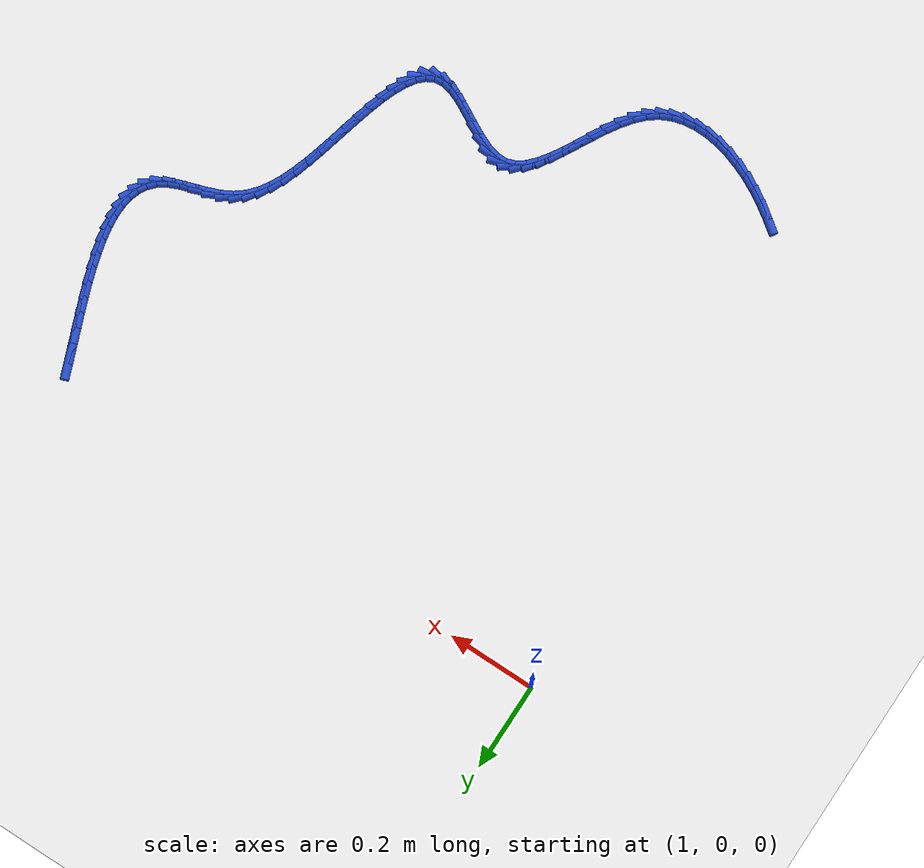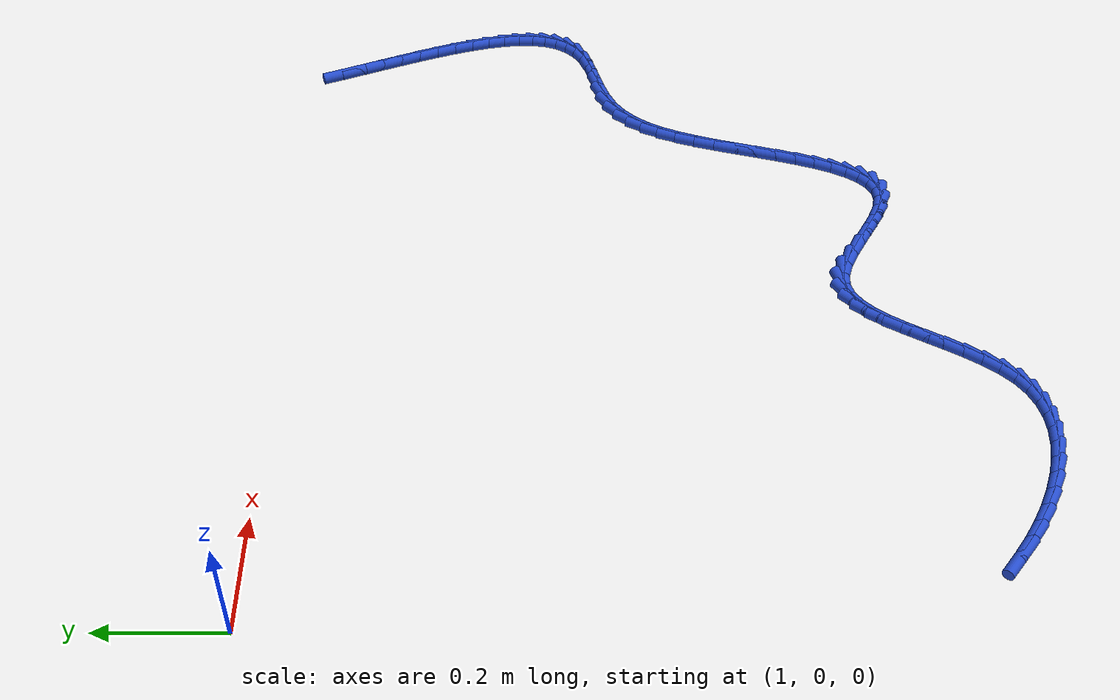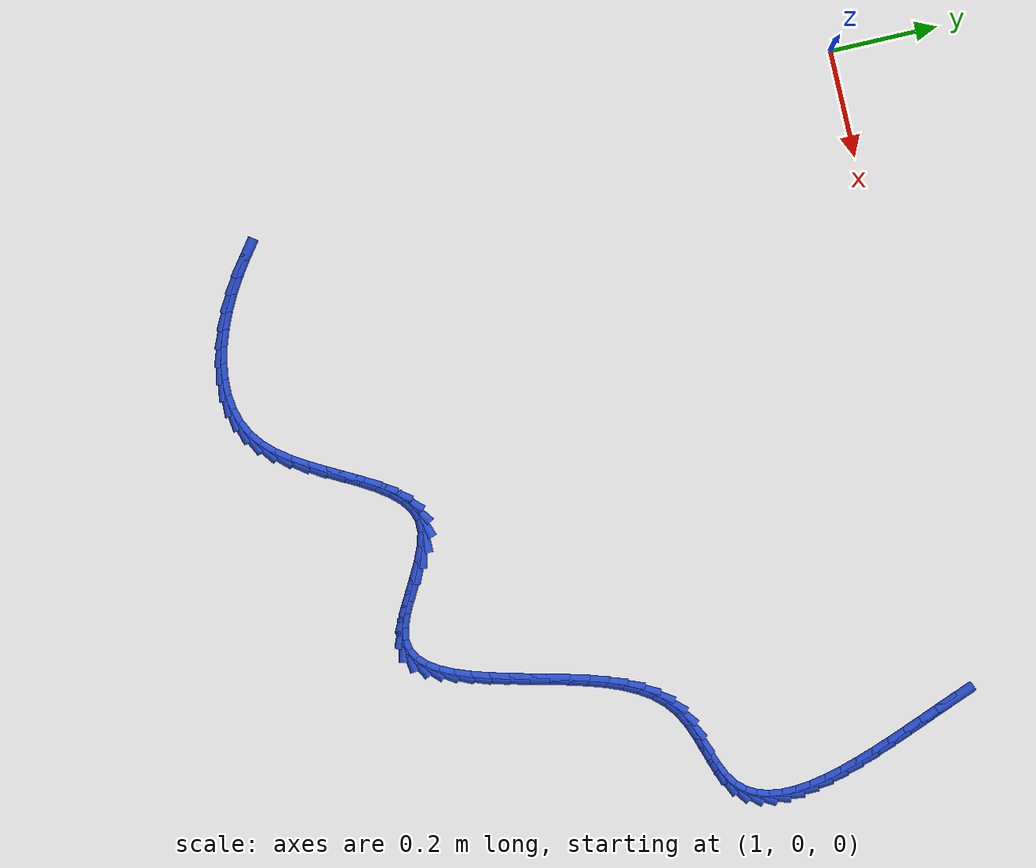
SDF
<sdf version="1.6">
 <world name="default">
  <model name="ground_plane">
   <static>1</static>
   <link name="link">
    <collision name="collision">
     <geometry><plane><normal>0 0 1</normal><size>100 100</size></plane></geometry>
     <surface><friction><ode><mu>100</mu><mu2>50</mu2></ode></friction></surface>
    </collision>
    <visual name="visual">
     <cast_shadows>0</cast_shadows>
     <geometry><plane><normal>0 0 1</normal><size>100 100</size></plane></geometry>
     <material>
      <script><uri>file://media/materials/scripts/gazebo.material</uri><name>Gazebo/WhiteGlow</name></script>
     </material>
    </visual>
   </link>
  </model>
  <model name="line">
   <link name="link_139">
    <pose>2.201142323351105 -0.04360350823469124 0.01 0 1.57 -1.2011310993112423</pose>
    <collision name="collision">
     <geometry><cylinder><radius>0.01</radius><length>0.08</length></cylinder></geometry>
    </collision>
    <visual name="visual">
     <material>
      <script><name>Gazebo/Blue</name><uri>file://media/materials/scripts/gazebo.material</uri></script>
     </material>
     <geometry><cylinder><radius>0.01</radius><length>0.08</length></cylinder></geometry>
    </visual>
   </link>
   <link name="link_140">
    <pose>2.2137091033663823 -0.07603574317068523 0.01 0 1.57 -1.1957572216161112</pose>
    <collision name="collision">
     <geometry><cylinder><radius>0.01</radius><length>0.08</length></cylinder></geometry>
    </collision>
    <visual name="visual">
     <material>
      <script><name>Gazebo/Blue</name><uri>file://media/materials/scripts/gazebo.material</uri></script>
     </material>
     <geometry><cylinder><radius>0.01</radius><length>0.08</length></cylinder></geometry>
    </visual>
   </link>
   <link name="link_141">
    <pose>2.2266985634324397 -0.10903140610215024 0.01 0 1.57 -1.1975371997344688</pose>
    <collision name="collision">
     <geometry><cylinder><radius>0.01</radius><length>0.08</length></cylinder></geometry>
    </collision>
    <visual name="visual">
     <material>
      <script><name>Gazebo/Blue</name><uri>file://media/materials/scripts/gazebo.material</uri></script>
     </material>
     <geometry><cylinder><radius>0.01</radius><length>0.08</length></cylinder></geometry>
    </visual>
   </link>
   <link name="link_142">
    <pose>2.239739283748 -0.14233105568766702 0.01 0 1.57 -1.2063457738687988</pose>
    <collision name="collision">
     <geometry><cylinder><radius>0.01</radius><length>0.08</length></cylinder></geometry>
    </collision>
    <visual name="visual">
     <material>
      <script><name>Gazebo/Blue</name><uri>file://media/materials/scripts/gazebo.material</uri></script>
     </material>
     <geometry><cylinder><radius>0.01</radius><length>0.08</length></cylinder></geometry>
    </visual>
   </link>
   <link name="link_143">
    <pose>2.2524598445117854 -0.17567525058581585 0.01 0 1.57 -1.2225062482204552</pose>
    <collision name="collision">
     <geometry><cylinder><radius>0.01</radius><length>0.08</length></cylinder></geometry>
    </collision>
    <visual name="visual">
     <material>
      <script><name>Gazebo/Blue</name><uri>file://media/materials/scripts/gazebo.material</uri></script>
     </material>
     <geometry><cylinder><radius>0.01</radius><length>0.08</length></cylinder></geometry>
    </visual>
   </link>
   <link name="link_144">
    <pose>2.264488825922518 -0.20880454945517724 0.01 0 1.57 -1.2468151386552007</pose>
    <collision name="collision">
     <geometry><cylinder><radius>0.01</radius><length>0.08</length></cylinder></geometry>
    </collision>
    <visual name="visual">
     <material>
      <script><name>Gazebo/Blue</name><uri>file://media/materials/scripts/gazebo.material</uri></script>
     </material>
     <geometry><cylinder><radius>0.01</radius><length>0.08</length></cylinder></geometry>
    </visual>
   </link>
   <link name="link_145">
    <pose>2.2754548081789197 -0.24145951095433138 0.01 0 1.57 -1.2806273607047194</pose>
    <collision name="collision">
     <geometry><cylinder><radius>0.01</radius><length>0.08</length></cylinder></geometry>
    </collision>
    <visual name="visual">
     <material>
      <script><name>Gazebo/Blue</name><uri>file://media/materials/scripts/gazebo.material</uri></script>
     </material>
     <geometry><cylinder><radius>0.01</radius><length>0.08</length></cylinder></geometry>
    </visual>
   </link>
   <link name="link_146">
    <pose>2.284986371479714 -0.2733806937418596 0.01 0 1.57 -1.3260083592012446</pose>
    <collision name="collision">
     <geometry><cylinder><radius>0.01</radius><length>0.08</length></cylinder></geometry>
    </collision>
    <visual name="visual">
     <material>
      <script><name>Gazebo/Blue</name><uri>file://media/materials/scripts/gazebo.material</uri></script>
     </material>
     <geometry><cylinder><radius>0.01</radius><length>0.08</length></cylinder></geometry>
    </visual>
   </link>
   <link name="link_147">
    <pose>2.292712096023623 -0.3043086564763403 0.01 0 1.57 -1.3859579873691996</pose>
    <collision name="collision">
     <geometry><cylinder><radius>0.01</radius><length>0.08</length></cylinder></geometry>
    </collision>
    <visual name="visual">
     <material>
      <script><name>Gazebo/Blue</name><uri>file://media/materials/scripts/gazebo.material</uri></script>
     </material>
     <geometry><cylinder><radius>0.01</radius><length>0.08</length></cylinder></geometry>
    </visual>
   </link>
   <link name="link_148">
    <pose>2.298260562009369 -0.3339839578163549 0.01 0 1.57 -1.4646819699935776</pose>
    <collision name="collision">
     <geometry><cylinder><radius>0.01</radius><length>0.08</length></cylinder></geometry>
    </collision>
    <visual name="visual">
     <material>
      <script><name>Gazebo/Blue</name><uri>file://media/materials/scripts/gazebo.material</uri></script>
     </material>
     <geometry><cylinder><radius>0.01</radius><length>0.08</length></cylinder></geometry>
    </visual>
   </link>
   <link name="link_149">
    <pose>2.301260349635674 -0.36214715642048356 0.01 0 1.57 -1.5677768410964157</pose>
    <collision name="collision">
     <geometry><cylinder><radius>0.01</radius><length>0.08</length></cylinder></geometry>
    </collision>
    <visual name="visual">
     <material>
      <script><name>Gazebo/Blue</name><uri>file://media/materials/scripts/gazebo.material</uri></script>
     </material>
     <geometry><cylinder><radius>0.01</radius><length>0.08</length></cylinder></geometry>
    </visual>
   </link>
   <link name="link_150">
    <pose>2.301340039101261 -0.38853881094730675 0.01 0 1.57 1.4397075731313793</pose>
    <collision name="collision">
     <geometry><cylinder><radius>0.01</radius><length>0.08</length></cylinder></geometry>
    </collision>
    <visual name="visual">
     <material>
      <script><name>Gazebo/Blue</name><uri>file://media/materials/scripts/gazebo.material</uri></script>
     </material>
     <geometry><cylinder><radius>0.01</radius><length>0.08</length></cylinder></geometry>
    </visual>
   </link>
   <link name="link_151">
    <pose>2.298128210604851 -0.41289948005540467 0.01 0 1.57 1.268827467669685</pose>
    <collision name="collision">
     <geometry><cylinder><radius>0.01</radius><length>0.08</length></cylinder></geometry>
    </collision>
    <visual name="visual">
     <material>
      <script><name>Gazebo/Blue</name><uri>file://media/materials/scripts/gazebo.material</uri></script>
     </material>
     <geometry><cylinder><radius>0.01</radius><length>0.08</length></cylinder></geometry>
    </visual>
   </link>
   <link name="link_152">
    <pose>2.2912534443451693 -0.43496972240335796 0.01 0 1.57 1.0611775404678887</pose>
    <collision name="collision">
     <geometry><cylinder><radius>0.01</radius><length>0.08</length></cylinder></geometry>
    </collision>
    <visual name="visual">
     <material>
      <script><name>Gazebo/Blue</name><uri>file://media/materials/scripts/gazebo.material</uri></script>
     </material>
     <geometry><cylinder><radius>0.01</radius><length>0.08</length></cylinder></geometry>
    </visual>
   </link>
   <link name="link_153">
    <pose>2.2803443205209355 -0.45449009664974654 0.01 0 1.57 0.8289653160822892</pose>
    <collision name="collision">
     <geometry><cylinder><radius>0.01</radius><length>0.08</length></cylinder></geometry>
    </collision>
    <visual name="visual">
     <material>
      <script><name>Gazebo/Blue</name><uri>file://media/materials/scripts/gazebo.material</uri></script>
     </material>
     <geometry><cylinder><radius>0.01</radius><length>0.08</length></cylinder></geometry>
    </visual>
   </link>
   <link name="link_154">
    <pose>2.265029419330873 -0.47120116145315105 0.01 0 1.57 0.5967956826038207</pose>
    <collision name="collision">
     <geometry><cylinder><radius>0.01</radius><length>0.08</length></cylinder></geometry>
    </collision>
    <visual name="visual">
     <material>
      <script><name>Gazebo/Blue</name><uri>file://media/materials/scripts/gazebo.material</uri></script>
     </material>
     <geometry><cylinder><radius>0.01</radius><length>0.08</length></cylinder></geometry>
    </visual>
   </link>
   <link name="link_155">
    <pose>2.2449435877581037 -0.4848483392292375 0.01 0 1.57 0.4170370262422329</pose>
    <collision name="collision">
     <geometry><cylinder><radius>0.01</radius><length>0.08</length></cylinder></geometry>
    </collision>
    <visual name="visual">
     <material>
      <script><name>Gazebo/Blue</name><uri>file://media/materials/scripts/gazebo.material</uri></script>
     </material>
     <geometry><cylinder><radius>0.01</radius><length>0.08</length></cylinder></geometry>
    </visual>
   </link>
   <link name="link_156">
    <pose>2.220414935434066 -0.49571510522943657 0.01 0 1.57 0.33089405616274786</pose>
    <collision name="collision">
     <geometry><cylinder><radius>0.01</radius><length>0.08</length></cylinder></geometry>
    </collision>
    <visual name="visual">
     <material>
      <script><name>Gazebo/Blue</name><uri>file://media/materials/scripts/gazebo.material</uri></script>
     </material>
     <geometry><cylinder><radius>0.01</radius><length>0.08</length></cylinder></geometry>
    </visual>
   </link>
   <link name="link_157">
    <pose>2.1930843649816207 -0.5051038154908781 0.01 0 1.57 0.31787393986393375</pose>
    <collision name="collision">
     <geometry><cylinder><radius>0.01</radius><length>0.08</length></cylinder></geometry>
    </collision>
    <visual name="visual">
     <material>
      <script><name>Gazebo/Blue</name><uri>file://media/materials/scripts/gazebo.material</uri></script>
     </material>
     <geometry><cylinder><radius>0.01</radius><length>0.08</length></cylinder></geometry>
    </visual>
   </link>
   <link name="link_158">
    <pose>2.1647390212013518 -0.5144303270717305 0.01 0 1.57 0.36954689997870915</pose>
    <collision name="collision">
     <geometry><cylinder><radius>0.01</radius><length>0.08</length></cylinder></geometry>
    </collision>
    <visual name="visual">
     <material>
      <script><name>Gazebo/Blue</name><uri>file://media/materials/scripts/gazebo.material</uri></script>
     </material>
     <geometry><cylinder><radius>0.01</radius><length>0.08</length></cylinder></geometry>
    </visual>
   </link>
   <link name="link_159">
    <pose>2.1371660488938415 -0.5251104970301623 0.01 0 1.57 0.49293054939678344</pose>
    <collision name="collision">
     <geometry><cylinder><radius>0.01</radius><length>0.08</length></cylinder></geometry>
    </collision>
    <visual name="visual">
     <material>
      <script><name>Gazebo/Blue</name><uri>file://media/materials/scripts/gazebo.material</uri></script>
     </material>
     <geometry><cylinder><radius>0.01</radius><length>0.08</length></cylinder></geometry>
    </visual>
   </link>
   <link name="link_160">
    <pose>2.1121418812658566 -0.5385524376221885 0.01 0 1.57 0.6701525998566921</pose>
    <collision name="collision">
     <geometry><cylinder><radius>0.01</radius><length>0.08</length></cylinder></geometry>
    </collision>
    <visual name="visual">
     <material>
      <script><name>Gazebo/Blue</name><uri>file://media/materials/scripts/gazebo.material</uri></script>
     </material>
     <geometry><cylinder><radius>0.01</radius><length>0.08</length></cylinder></geometry>
    </visual>
   </link>
   <link name="link_161">
    <pose>2.0906459589365256 -0.55558801166662 0.01 0 1.57 0.8413818967616188</pose>
    <collision name="collision">
     <geometry><cylinder><radius>0.01</radius><length>0.08</length></cylinder></geometry>
    </collision>
    <visual name="visual">
     <material>
      <script><name>Gazebo/Blue</name><uri>file://media/materials/scripts/gazebo.material</uri></script>
     </material>
     <geometry><cylinder><radius>0.01</radius><length>0.08</length></cylinder></geometry>
    </visual>
   </link>
   <link name="link_162">
    <pose>2.072324402228277 -0.576085051597914 0.01 0 1.57 0.9885030024770792</pose>
    <collision name="collision">
     <geometry><cylinder><radius>0.01</radius><length>0.08</length></cylinder></geometry>
    </collision>
    <visual name="visual">
     <material>
      <script><name>Gazebo/Blue</name><uri>file://media/materials/scripts/gazebo.material</uri></script>
     </material>
     <geometry><cylinder><radius>0.01</radius><length>0.08</length></cylinder></geometry>
    </visual>
   </link>
   <link name="link_163">
    <pose>2.0566963680572776 -0.5998195915169696 0.01 0 1.57 1.1059137225830897</pose>
    <collision name="collision">
     <geometry><cylinder><radius>0.01</radius><length>0.08</length></cylinder></geometry>
    </collision>
    <visual name="visual">
     <material>
      <script><name>Gazebo/Blue</name><uri>file://media/materials/scripts/gazebo.material</uri></script>
     </material>
     <geometry><cylinder><radius>0.01</radius><length>0.08</length></cylinder></geometry>
    </visual>
   </link>
   <link name="link_164">
    <pose>2.043281013339695 -0.6265676655246865 0.01 0 1.57 1.1941348443731645</pose>
    <collision name="collision">
     <geometry><cylinder><radius>0.01</radius><length>0.08</length></cylinder></geometry>
    </collision>
    <visual name="visual">
     <material>
      <script><name>Gazebo/Blue</name><uri>file://media/materials/scripts/gazebo.material</uri></script>
     </material>
     <geometry><cylinder><radius>0.01</radius><length>0.08</length></cylinder></geometry>
    </visual>
   </link>
   <link name="link_165">
    <pose>2.0315974949916966 -0.6561053077219622 0.01 0 1.57 1.2565631858943447</pose>
    <collision name="collision">
     <geometry><cylinder><radius>0.01</radius><length>0.08</length></cylinder></geometry>
    </collision>
    <visual name="visual">
     <material>
      <script><name>Gazebo/Blue</name><uri>file://media/materials/scripts/gazebo.material</uri></script>
     </material>
     <geometry><cylinder><radius>0.01</radius><length>0.08</length></cylinder></geometry>
    </visual>
   </link>
   <link name="link_166">
    <pose>2.021174180166248 -0.6881769101578524 0.01 0 1.57 1.2974320737190903</pose>
    <collision name="collision">
     <geometry><cylinder><radius>0.01</radius><length>0.08</length></cylinder></geometry>
    </collision>
    <visual name="visual">
     <material>
      <script><name>Gazebo/Blue</name><uri>file://media/materials/scripts/gazebo.material</uri></script>
     </material>
     <geometry><cylinder><radius>0.01</radius><length>0.08</length></cylinder></geometry>
    </visual>
   </link>
   <link name="link_167">
    <pose>2.0116370263051806 -0.7221915904418784 0.01 0 1.57 1.3211386373826186</pose>
    <collision name="collision">
     <geometry><cylinder><radius>0.01</radius><length>0.08</length></cylinder></geometry>
    </collision>
    <visual name="visual">
     <material>
      <script><name>Gazebo/Blue</name><uri>file://media/materials/scripts/gazebo.material</uri></script>
     </material>
     <geometry><cylinder><radius>0.01</radius><length>0.08</length></cylinder></geometry>
    </visual>
   </link>
   <link name="link_168">
    <pose>2.0026707254335205 -0.7573566817161913 0.01 0 1.57 1.3303289772469147</pose>
    <collision name="collision">
     <geometry><cylinder><radius>0.01</radius><length>0.08</length></cylinder></geometry>
    </collision>
    <visual name="visual">
     <material>
      <script><name>Gazebo/Blue</name><uri>file://media/materials/scripts/gazebo.material</uri></script>
     </material>
     <geometry><cylinder><radius>0.01</radius><length>0.08</length></cylinder></geometry>
    </visual>
   </link>
   <link name="link_169">
    <pose>1.9939607749754473 -0.7928767501493622 0.01 0 1.57 1.3258659663445236</pose>
    <collision name="collision">
     <geometry><cylinder><radius>0.01</radius><length>0.08</length></cylinder></geometry>
    </collision>
    <visual name="visual">
     <material>
      <script><name>Gazebo/Blue</name><uri>file://media/materials/scripts/gazebo.material</uri></script>
     </material>
     <geometry><cylinder><radius>0.01</radius><length>0.08</length></cylinder></geometry>
    </visual>
   </link>
   <link name="link_170">
    <pose>1.9851926723551427 -0.8279563619099637 0.01 0 1.57 1.3070031792304615</pose>
    <collision name="collision">
     <geometry><cylinder><radius>0.01</radius><length>0.08</length></cylinder></geometry>
    </collision>
    <visual name="visual">
     <material>
      <script><name>Gazebo/Blue</name><uri>file://media/materials/scripts/gazebo.material</uri></script>
     </material>
     <geometry><cylinder><radius>0.01</radius><length>0.08</length></cylinder></geometry>
    </visual>
   </link>
   <link name="link_171">
    <pose>1.976051914996788 -0.8618000831665675 0.01 0 1.57 1.2711639581525376</pose>
    <collision name="collision">
     <geometry><cylinder><radius>0.01</radius><length>0.08</length></cylinder></geometry>
    </collision>
    <visual name="visual">
     <material>
      <script><name>Gazebo/Blue</name><uri>file://media/materials/scripts/gazebo.material</uri></script>
     </material>
     <geometry><cylinder><radius>0.01</radius><length>0.08</length></cylinder></geometry>
    </visual>
   </link>
   <link name="link_172">
    <pose>1.9662240003245623 -0.8936124800877454 0.01 0 1.57 1.2132372726907243</pose>
    <collision name="collision">
     <geometry><cylinder><radius>0.01</radius><length>0.08</length></cylinder></geometry>
    </collision>
    <visual name="visual">
     <material>
      <script><name>Gazebo/Blue</name><uri>file://media/materials/scripts/gazebo.material</uri></script>
     </material>
     <geometry><cylinder><radius>0.01</radius><length>0.08</length></cylinder></geometry>
    </visual>
   </link>
   <link name="link_173">
    <pose>1.9553944257626472 -0.9225981188420702 0.01 0 1.57 1.12419697609278</pose>
    <collision name="collision">
     <geometry><cylinder><radius>0.01</radius><length>0.08</length></cylinder></geometry>
    </collision>
    <visual name="visual">
     <material>
      <script><name>Gazebo/Blue</name><uri>file://media/materials/scripts/gazebo.material</uri></script>
     </material>
     <geometry><cylinder><radius>0.01</radius><length>0.08</length></cylinder></geometry>
    </visual>
   </link>
   <link name="link_174">
    <pose>1.9432486887352238 -0.9479615655981118 0.01 0 1.57 0.9890159461386508</pose>
    <collision name="collision">
     <geometry><cylinder><radius>0.01</radius><length>0.08</length></cylinder></geometry>
    </collision>
    <visual name="visual">
     <material>
      <script><name>Gazebo/Blue</name><uri>file://media/materials/scripts/gazebo.material</uri></script>
     </material>
     <geometry><cylinder><radius>0.01</radius><length>0.08</length></cylinder></geometry>
    </visual>
   </link>
   <link name="link_175">
    <pose>1.9294722866664726 -0.9689073865244434 0.01 0 1.57 0.7857539674627378</pose>
    <collision name="collision">
     <geometry><cylinder><radius>0.01</radius><length>0.08</length></cylinder></geometry>
    </collision>
    <visual name="visual">
     <material>
      <script><name>Gazebo/Blue</name><uri>file://media/materials/scripts/gazebo.material</uri></script>
     </material>
     <geometry><cylinder><radius>0.01</radius><length>0.08</length></cylinder></geometry>
    </visual>
   </link>
   <link name="link_176">
    <pose>1.913750716980575 -0.9846401477896367 0.01 0 1.57 0.4957530130684566</pose>
    <collision name="collision">
     <geometry><cylinder><radius>0.01</radius><length>0.08</length></cylinder></geometry>
    </collision>
    <visual name="visual">
     <material>
      <script><name>Gazebo/Blue</name><uri>file://media/materials/scripts/gazebo.material</uri></script>
     </material>
     <geometry><cylinder><radius>0.01</radius><length>0.08</length></cylinder></geometry>
    </visual>
   </link>
   <link name="link_177">
    <pose>1.895769477101711 -0.994364415562264 0.01 0 1.57 0.14112714214305197</pose>
    <collision name="collision">
     <geometry><cylinder><radius>0.01</radius><length>0.08</length></cylinder></geometry>
    </collision>
    <visual name="visual">
     <material>
      <script><name>Gazebo/Blue</name><uri>file://media/materials/scripts/gazebo.material</uri></script>
     </material>
     <geometry><cylinder><radius>0.01</radius><length>0.08</length></cylinder></geometry>
    </visual>
   </link>
   <link name="link_178">
    <pose>1.875214064454062 -0.9972847560108966 0.01 0 1.57 -0.18551429217657245</pose>
    <collision name="collision">
     <geometry><cylinder><radius>0.01</radius><length>0.08</length></cylinder></geometry>
    </collision>
    <visual name="visual">
     <material>
      <script><name>Gazebo/Blue</name><uri>file://media/materials/scripts/gazebo.material</uri></script>
     </material>
     <geometry><cylinder><radius>0.01</radius><length>0.08</length></cylinder></geometry>
    </visual>
   </link>
   <link name="link_179">
    <pose>1.8518777395901966 -0.9929051766883178 0.01 0 1.57 -0.3807448690096284</pose>
    <collision name="collision">
     <geometry><cylinder><radius>0.01</radius><length>0.08</length></cylinder></geometry>
    </collision>
    <visual name="visual">
     <material>
      <script><name>Gazebo/Blue</name><uri>file://media/materials/scripts/gazebo.material</uri></script>
     </material>
     <geometry><cylinder><radius>0.01</radius><length>0.08</length></cylinder></geometry>
    </visual>
   </link>
   <link name="link_180">
    <pose>1.82624271435544 -0.9826440739725342 0.01 0 1.57 -0.47478156053236337</pose>
    <collision name="collision">
     <geometry><cylinder><radius>0.01</radius><length>0.08</length></cylinder></geometry>
    </collision>
    <visual name="visual">
     <material>
      <script><name>Gazebo/Blue</name><uri>file://media/materials/scripts/gazebo.material</uri></script>
     </material>
     <geometry><cylinder><radius>0.01</radius><length>0.08</length></cylinder></geometry>
    </visual>
   </link>
   <link name="link_181">
    <pose>1.7990624339851973 -0.9686735204106136 0.01 0 1.57 -0.5061809402332712</pose>
    <collision name="collision">
     <geometry><cylinder><radius>0.01</radius><length>0.08</length></cylinder></geometry>
    </collision>
    <visual name="visual">
     <material>
      <script><name>Gazebo/Blue</name><uri>file://media/materials/scripts/gazebo.material</uri></script>
     </material>
     <geometry><cylinder><radius>0.01</radius><length>0.08</length></cylinder></geometry>
    </visual>
   </link>
   <link name="link_182">
    <pose>1.7710909966971942 -0.9531674029914716 0.01 0 1.57 -0.4880075745292289</pose>
    <collision name="collision">
     <geometry><cylinder><radius>0.01</radius><length>0.08</length></cylinder></geometry>
    </collision>
    <visual name="visual">
     <material>
      <script><name>Gazebo/Blue</name><uri>file://media/materials/scripts/gazebo.material</uri></script>
     </material>
     <geometry><cylinder><radius>0.01</radius><length>0.08</length></cylinder></geometry>
    </visual>
   </link>
   <link name="link_183">
    <pose>1.743082500709155 -0.938299608704023 0.01 0 1.57 -0.4159593047058121</pose>
    <collision name="collision">
     <geometry><cylinder><radius>0.01</radius><length>0.08</length></cylinder></geometry>
    </collision>
    <visual name="visual">
     <material>
      <script><name>Gazebo/Blue</name><uri>file://media/materials/scripts/gazebo.material</uri></script>
     </material>
     <geometry><cylinder><radius>0.01</radius><length>0.08</length></cylinder></geometry>
    </visual>
   </link>
   <link name="link_184">
    <pose>1.7157910442388031 -0.9262440245371818 0.01 0 1.57 -0.2672460516090795</pose>
    <collision name="collision">
     <geometry><cylinder><radius>0.01</radius><length>0.08</length></cylinder></geometry>
    </collision>
    <visual name="visual">
     <material>
      <script><name>Gazebo/Blue</name><uri>file://media/materials/scripts/gazebo.material</uri></script>
     </material>
     <geometry><cylinder><radius>0.01</radius><length>0.08</length></cylinder></geometry>
    </visual>
   </link>
   <link name="link_185">
    <pose>1.6899707255038647 -0.9191745374798637 0.01 0 1.57 0.00046831406373389994</pose>
    <collision name="collision">
     <geometry><cylinder><radius>0.01</radius><length>0.08</length></cylinder></geometry>
    </collision>
    <visual name="visual">
     <material>
      <script><name>Gazebo/Blue</name><uri>file://media/materials/scripts/gazebo.material</uri></script>
     </material>
     <geometry><cylinder><radius>0.01</radius><length>0.08</length></cylinder></geometry>
    </visual>
   </link>
   <link name="link_186">
    <pose>1.6663474620768912 -0.9191856005871666 0.01 0 1.57 0.3411761702851217</pose>
    <collision name="collision">
     <geometry><cylinder><radius>0.01</radius><length>0.08</length></cylinder></geometry>
    </collision>
    <visual name="visual">
     <material>
      <script><name>Gazebo/Blue</name><uri>file://media/materials/scripts/gazebo.material</uri></script>
     </material>
     <geometry><cylinder><radius>0.01</radius><length>0.08</length></cylinder></geometry>
    </visual>
   </link>
   <link name="link_187">
    <pose>1.6450686208183203 -0.9267408824273545 0.01 0 1.57 0.628008353436337</pose>
    <collision name="collision">
     <geometry><cylinder><radius>0.01</radius><length>0.08</length></cylinder></geometry>
    </collision>
    <visual name="visual">
     <material>
      <script><name>Gazebo/Blue</name><uri>file://media/materials/scripts/gazebo.material</uri></script>
     </material>
     <geometry><cylinder><radius>0.01</radius><length>0.08</length></cylinder></geometry>
    </visual>
   </link>
   <link name="link_188">
    <pose>1.625739232517161 -0.9407753467664757 0.01 0 1.57 0.8282324335751761</pose>
    <collision name="collision">
     <geometry><cylinder><radius>0.01</radius><length>0.08</length></cylinder></geometry>
    </collision>
    <visual name="visual">
     <material>
      <script><name>Gazebo/Blue</name><uri>file://media/materials/scripts/gazebo.material</uri></script>
     </material>
     <geometry><cylinder><radius>0.01</radius><length>0.08</length></cylinder></geometry>
    </visual>
   </link>
   <link name="link_189">
    <pose>1.6079433997337793 -0.9601649661190036 0.01 0 1.57 0.9560004038774312</pose>
    <collision name="collision">
     <geometry><cylinder><radius>0.01</radius><length>0.08</length></cylinder></geometry>
    </collision>
    <visual name="visual">
     <material>
      <script><name>Gazebo/Blue</name><uri>file://media/materials/scripts/gazebo.material</uri></script>
     </material>
     <geometry><cylinder><radius>0.01</radius><length>0.08</length></cylinder></geometry>
    </visual>
   </link>
   <link name="link_190">
    <pose>1.5912652250285415 -0.9837857129994124 0.01 0 1.57 1.0320371927008125</pose>
    <collision name="collision">
     <geometry><cylinder><radius>0.01</radius><length>0.08</length></cylinder></geometry>
    </collision>
    <visual name="visual">
     <material>
      <script><name>Gazebo/Blue</name><uri>file://media/materials/scripts/gazebo.material</uri></script>
     </material>
     <geometry><cylinder><radius>0.01</radius><length>0.08</length></cylinder></geometry>
    </visual>
   </link>
   <link name="link_191">
    <pose>1.5752888109618153 -1.010513559922174 0.01 0 1.57 1.070643331721886</pose>
    <collision name="collision">
     <geometry><cylinder><radius>0.01</radius><length>0.08</length></cylinder></geometry>
    </collision>
    <visual name="visual">
     <material>
      <script><name>Gazebo/Blue</name><uri>file://media/materials/scripts/gazebo.material</uri></script>
     </material>
     <geometry><cylinder><radius>0.01</radius><length>0.08</length></cylinder></geometry>
    </visual>
   </link>
   <link name="link_192">
    <pose>1.5595982600939662 -1.0392244794017624 0.01 0 1.57 1.0795251236761856</pose>
    <collision name="collision">
     <geometry><cylinder><radius>0.01</radius><length>0.08</length></cylinder></geometry>
    </collision>
    <visual name="visual">
     <material>
      <script><name>Gazebo/Blue</name><uri>file://media/materials/scripts/gazebo.material</uri></script>
     </material>
     <geometry><cylinder><radius>0.01</radius><length>0.08</length></cylinder></geometry>
    </visual>
   </link>
   <link name="link_193">
    <pose>1.5437776749853607 -1.0687944439526513 0.01 0 1.57 1.0614588476523574</pose>
    <collision name="collision">
     <geometry><cylinder><radius>0.01</radius><length>0.08</length></cylinder></geometry>
    </collision>
    <visual name="visual">
     <material>
      <script><name>Gazebo/Blue</name><uri>file://media/materials/scripts/gazebo.material</uri></script>
     </material>
     <geometry><cylinder><radius>0.01</radius><length>0.08</length></cylinder></geometry>
    </visual>
   </link>
   <link name="link_194">
    <pose>1.527411158196365 -1.0980994260893133 0.01 0 1.57 1.015271800699588</pose>
    <collision name="collision">
     <geometry><cylinder><radius>0.01</radius><length>0.08</length></cylinder></geometry>
    </collision>
    <visual name="visual">
     <material>
      <script><name>Gazebo/Blue</name><uri>file://media/materials/scripts/gazebo.material</uri></script>
     </material>
     <geometry><cylinder><radius>0.01</radius><length>0.08</length></cylinder></geometry>
    </visual>
   </link>
   <link name="link_195">
    <pose>1.5100828122873453 -1.1260153983262222 0.01 0 1.57 0.9360727460713321</pose>
    <collision name="collision">
     <geometry><cylinder><radius>0.01</radius><length>0.08</length></cylinder></geometry>
    </collision>
    <visual name="visual">
     <material>
      <script><name>Gazebo/Blue</name><uri>file://media/materials/scripts/gazebo.material</uri></script>
     </material>
     <geometry><cylinder><radius>0.01</radius><length>0.08</length></cylinder></geometry>
    </visual>
   </link>
   <link name="link_196">
    <pose>1.4913767398186693 -1.1514183331778518 0.01 0 1.57 0.8153467727452816</pose>
    <collision name="collision">
     <geometry><cylinder><radius>0.01</radius><length>0.08</length></cylinder></geometry>
    </collision>
    <visual name="visual">
     <material>
      <script><name>Gazebo/Blue</name><uri>file://media/materials/scripts/gazebo.material</uri></script>
     </material>
     <geometry><cylinder><radius>0.01</radius><length>0.08</length></cylinder></geometry>
    </visual>
   </link>
   <link name="link_197">
    <pose>1.4708770433507021 -1.1731842031586748 0.01 0 1.57 0.6456352498779243</pose>
    <collision name="collision">
     <geometry><cylinder><radius>0.01</radius><length>0.08</length></cylinder></geometry>
    </collision>
    <visual name="visual">
     <material>
      <script><name>Gazebo/Blue</name><uri>file://media/materials/scripts/gazebo.material</uri></script>
     </material>
     <geometry><cylinder><radius>0.01</radius><length>0.08</length></cylinder></geometry>
    </visual>
   </link>
   <link name="link_198">
    <pose>1.4482062904335982 -1.1902629869472978 0.01 0 1.57 0.45672000364617366</pose>
    <collision name="collision">
     <geometry><cylinder><radius>0.01</radius><length>0.08</length></cylinder></geometry>
    </collision>
    <visual name="visual">
     <material>
      <script><name>Gazebo/Blue</name><uri>file://media/materials/scripts/gazebo.material</uri></script>
     </material>
     <geometry><cylinder><radius>0.01</radius><length>0.08</length></cylinder></geometry>
    </visual>
   </link>
   <link name="link_199">
    <pose>1.4234218946584543 -1.2024413016214612 0.01 0 1.57 0.27840264382940666</pose>
    <collision name="collision">
     <geometry><cylinder><radius>0.01</radius><length>0.08</length></cylinder></geometry>
    </collision>
    <visual name="visual">
     <material>
      <script><name>Gazebo/Blue</name><uri>file://media/materials/scripts/gazebo.material</uri></script>
     </material>
     <geometry><cylinder><radius>0.01</radius><length>0.08</length></cylinder></geometry>
    </visual>
   </link>
   <link name="link_200">
    <pose>1.3968560789347313 -1.2100344939851375 0.01 0 1.57 0.11838931530536875</pose>
    <collision name="collision">
     <geometry><cylinder><radius>0.01</radius><length>0.08</length></cylinder></geometry>
    </collision>
    <visual name="visual">
     <material>
      <script><name>Gazebo/Blue</name><uri>file://media/materials/scripts/gazebo.material</uri></script>
     </material>
     <geometry><cylinder><radius>0.01</radius><length>0.08</length></cylinder></geometry>
    </visual>
   </link>
   <link name="link_201">
    <pose>1.3688453953618762 -1.2133662401502388 0.01 0 1.57 -0.020808972182665555</pose>
    <collision name="collision">
     <geometry><cylinder><radius>0.01</radius><length>0.08</length></cylinder></geometry>
    </collision>
    <visual name="visual">
     <material>
      <script><name>Gazebo/Blue</name><uri>file://media/materials/scripts/gazebo.material</uri></script>
     </material>
     <geometry><cylinder><radius>0.01</radius><length>0.08</length></cylinder></geometry>
    </visual>
   </link>
   <link name="link_202">
    <pose>1.3397263960393377 -1.2127602162286797 0.01 0 1.57 -0.14025766160274786</pose>
    <collision name="collision">
     <geometry><cylinder><radius>0.01</radius><length>0.08</length></cylinder></geometry>
    </collision>
    <visual name="visual">
     <material>
      <script><name>Gazebo/Blue</name><uri>file://media/materials/scripts/gazebo.material</uri></script>
     </material>
     <geometry><cylinder><radius>0.01</radius><length>0.08</length></cylinder></geometry>
    </visual>
   </link>
   <link name="link_203">
    <pose>1.3098356330665626 -1.208540098332371 0.01 0 1.57 -0.24277525300298852</pose>
    <collision name="collision">
     <geometry><cylinder><radius>0.01</radius><length>0.08</length></cylinder></geometry>
    </collision>
    <visual name="visual">
     <material>
      <script><name>Gazebo/Blue</name><uri>file://media/materials/scripts/gazebo.material</uri></script>
     </material>
     <geometry><cylinder><radius>0.01</radius><length>0.08</length></cylinder></geometry>
    </visual>
   </link>
   <link name="link_204">
    <pose>1.2795096585429995 -1.2010295625732277 0.01 0 1.57 -0.3316488736757946</pose>
    <collision name="collision">
     <geometry><cylinder><radius>0.01</radius><length>0.08</length></cylinder></geometry>
    </collision>
    <visual name="visual">
     <material>
      <script><name>Gazebo/Blue</name><uri>file://media/materials/scripts/gazebo.material</uri></script>
     </material>
     <geometry><cylinder><radius>0.01</radius><length>0.08</length></cylinder></geometry>
    </visual>
   </link>
   <link name="link_205">
    <pose>1.2490850245680962 -1.1905522850631614 0.01 0 1.57 -0.4100067820657385</pose>
    <collision name="collision">
     <geometry><cylinder><radius>0.01</radius><length>0.08</length></cylinder></geometry>
    </collision>
    <visual name="visual">
     <material>
      <script><name>Gazebo/Blue</name><uri>file://media/materials/scripts/gazebo.material</uri></script>
     </material>
     <geometry><cylinder><radius>0.01</radius><length>0.08</length></cylinder></geometry>
    </visual>
   </link>
   <link name="link_206">
    <pose>1.218898283241301 -1.1774319419140855 0.01 0 1.57 -0.4806175222453844</pose>
    <collision name="collision">
     <geometry><cylinder><radius>0.01</radius><length>0.08</length></cylinder></geometry>
    </collision>
    <visual name="visual">
     <material>
      <script><name>Gazebo/Blue</name><uri>file://media/materials/scripts/gazebo.material</uri></script>
     </material>
     <geometry><cylinder><radius>0.01</radius><length>0.08</length></cylinder></geometry>
    </visual>
   </link>
   <link name="link_207">
    <pose>1.1892859866620613 -1.1619922092379131 0.01 0 1.57 -0.5457192130313661</pose>
    <collision name="collision">
     <geometry><cylinder><radius>0.01</radius><length>0.08</length></cylinder></geometry>
    </collision>
    <visual name="visual">
     <material>
      <script><name>Gazebo/Blue</name><uri>file://media/materials/scripts/gazebo.material</uri></script>
     </material>
     <geometry><cylinder><radius>0.01</radius><length>0.08</length></cylinder></geometry>
    </visual>
   </link>
   <link name="link_208">
    <pose>1.1605792396980799 -1.1445605920646034 0.01 0 1.57 -0.6009274579689199</pose>
    <collision name="collision">
     <geometry><cylinder><radius>0.01</radius><length>0.08</length></cylinder></geometry>
    </collision>
    <visual name="visual">
     <material>
      <script><name>Gazebo/Blue</name><uri>file://media/materials/scripts/gazebo.material</uri></script>
     </material>
     <geometry><cylinder><radius>0.01</radius><length>0.08</length></cylinder></geometry>
    </visual>
   </link>
   <link name="link_209">
    <pose>1.1329180872100626 -1.1255988935673436 0.01 0 1.57 -0.6393971475114715</pose>
    <collision name="collision">
     <geometry><cylinder><radius>0.01</radius><length>0.08</length></cylinder></geometry>
    </collision>
    <visual name="visual">
     <material>
      <script><name>Gazebo/Blue</name><uri>file://media/materials/scripts/gazebo.material</uri></script>
     </material>
     <geometry><cylinder><radius>0.01</radius><length>0.08</length></cylinder></geometry>
    </visual>
   </link>
  </model>
 </world>
</sdf>
